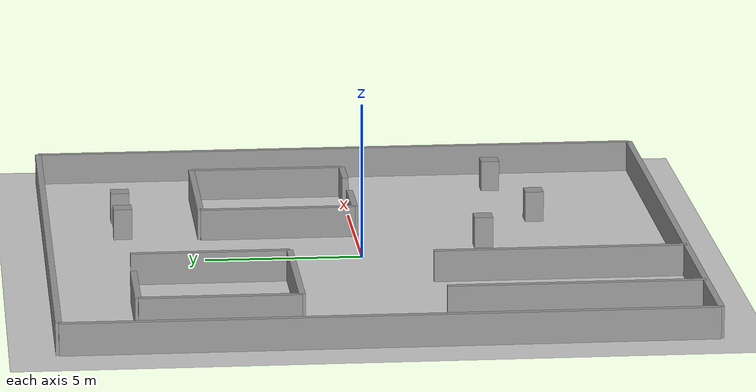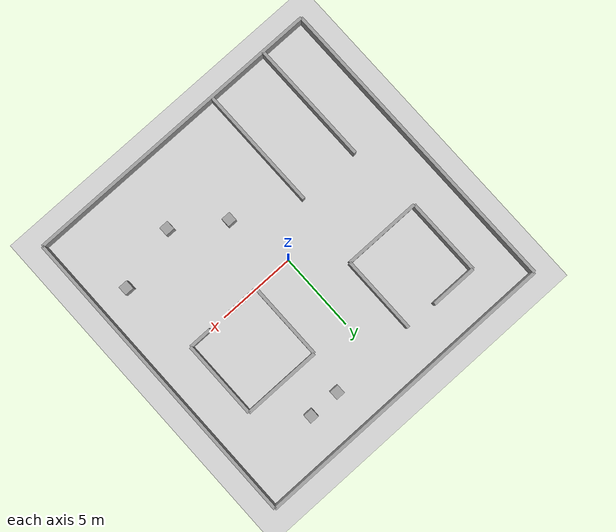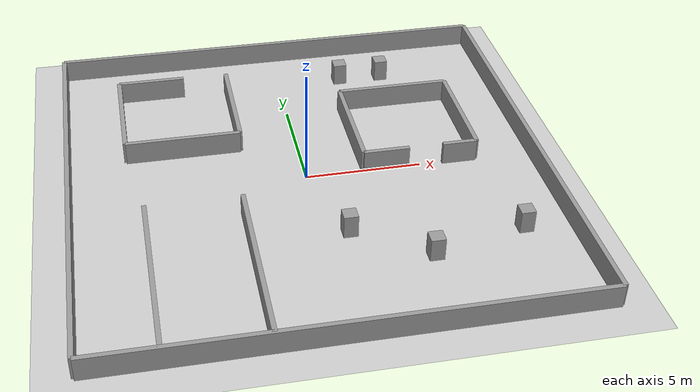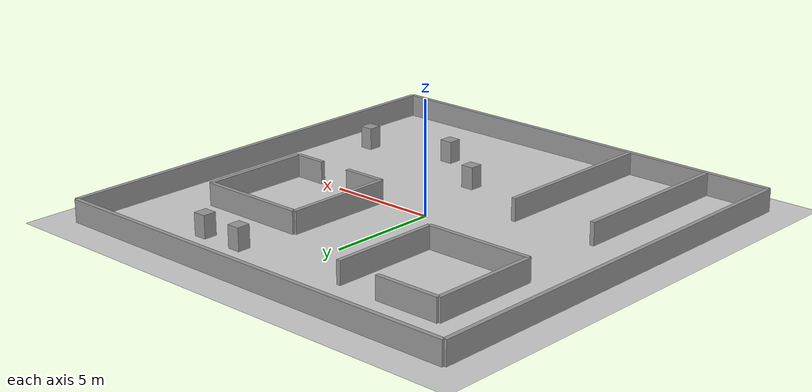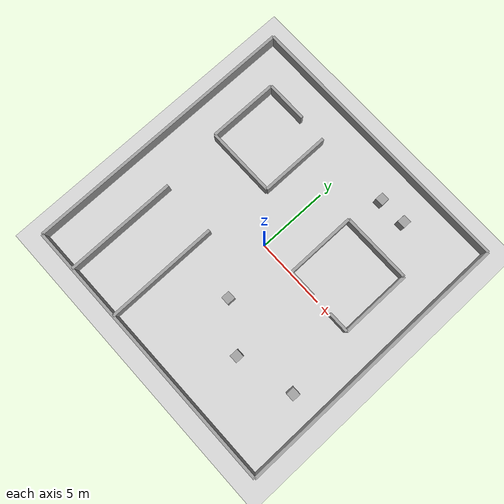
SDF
<?xml version="1.0" ?>
<sdf version="1.6">
  <world name="indoor_test">
    <include>
      <uri>model://ground_plane</uri>
    </include>
    <include>
      <uri>model://sun</uri>
    </include>

    <!-- Outer Walls -->
    <model name="outer_walls">
      <static>true</static>
      <link name="walls">

        <!-- Wall template -->
        <visual name="north">
          <pose>0 10 0.5 0 0 0</pose>
          <geometry><box><size>20 0.2 1</size></box></geometry>
          <material><script><uri>file://media/materials/scripts/gazebo.material</uri><name>Gazebo/Grey</name></script></material>
        </visual>
        <collision name="north">
          <pose>0 10 0.5 0 0 0</pose>
          <geometry><box><size>20 0.2 1</size></box></geometry>
        </collision>

        <visual name="south">
          <pose>0 -10 0.5 0 0 0</pose>
          <geometry><box><size>20 0.2 1</size></box></geometry>
          <material><script><uri>file://media/materials/scripts/gazebo.material</uri><name>Gazebo/Grey</name></script></material>
        </visual>
        <collision name="south">
          <pose>0 -10 0.5 0 0 0</pose>
          <geometry><box><size>20 0.2 1</size></box></geometry>
        </collision>

        <visual name="west">
          <pose>-10 0 0.5 0 0 0</pose>
          <geometry><box><size>0.2 20 1</size></box></geometry>
          <material><script><uri>file://media/materials/scripts/gazebo.material</uri><name>Gazebo/Grey</name></script></material>
        </visual>
        <collision name="west">
          <pose>-10 0 0.5 0 0 0</pose>
          <geometry><box><size>0.2 20 1</size></box></geometry>
        </collision>

        <visual name="east">
          <pose>10 0 0.5 0 0 0</pose>
          <geometry><box><size>0.2 20 1</size></box></geometry>
          <material><script><uri>file://media/materials/scripts/gazebo.material</uri><name>Gazebo/Grey</name></script></material>
        </visual>
        <collision name="east">
          <pose>10 0 0.5 0 0 0</pose>
          <geometry><box><size>0.2 20 1</size></box></geometry>
        </collision>

      </link>
    </model>

    <!-- Corridor -->
    <model name="corridor">
      <static>true</static>
      <link name="walls">
        <visual name="c_wall1">
          <pose>-7 -6 0.5 0 0 0</pose>
          <geometry><box><size>0.2 8 1</size></box></geometry>
          <material><script><uri>file://media/materials/scripts/gazebo.material</uri><name>Gazebo/Grey</name></script></material>
        </visual>
        <collision name="c_wall1">
          <pose>-7 -6 0.5 0 0 0</pose>
          <geometry><box><size>0.2 8 1</size></box></geometry>
        </collision>

        <visual name="c_wall2">
          <pose>-3 -6 0.5 0 0 0</pose>
          <geometry><box><size>0.2 8 1</size></box></geometry>
          <material><script><uri>file://media/materials/scripts/gazebo.material</uri><name>Gazebo/Grey</name></script></material>
        </visual>
        <collision name="c_wall2">
          <pose>-3 -6 0.5 0 0 0</pose>
          <geometry><box><size>0.2 8 1</size></box></geometry>
        </collision>
      </link>
    </model>

    <!-- Room 1 -->
    <model name="room_1">
      <static>true</static>
      <link name="walls">
        <!-- West -->
        <visual name="r1_west">
          <pose>2.5 2.5 0.5 0 0 0</pose>
          <geometry><box><size>0.2 5 1</size></box></geometry>
          <material><script><uri>file://media/materials/scripts/gazebo.material</uri><name>Gazebo/Grey</name></script></material>
        </visual>
        <collision name="r1_west">
          <pose>2.5 2.5 0.5 0 0 0</pose>
          <geometry><box><size>0.2 5 1</size></box></geometry>
        </collision>

        <!-- East -->
        <visual name="r1_east">
          <pose>7.5 2.5 0.5 0 0 0</pose>
          <geometry><box><size>0.2 5 1</size></box></geometry>
          <material><script><uri>file://media/materials/scripts/gazebo.material</uri><name>Gazebo/Grey</name></script></material>
        </visual>
        <collision name="r1_east">
          <pose>7.5 2.5 0.5 0 0 0</pose>
          <geometry><box><size>0.2 5 1</size></box></geometry>
        </collision>

        <!-- North -->
        <visual name="r1_north">
          <pose>5 5 0.5 0 0 0</pose>
          <geometry><box><size>5 0.2 1</size></box></geometry>
          <material><script><uri>file://media/materials/scripts/gazebo.material</uri><name>Gazebo/Grey</name></script></material>
        </visual>
        <collision name="r1_north">
          <pose>5 5 0.5 0 0 0</pose>
          <geometry><box><size>5 0.2 1</size></box></geometry>
        </collision>

        <!-- South split (gap in middle) -->
        <visual name="r1_south_left">
          <pose>3.5 0 0.5 0 0 0</pose>
          <geometry><box><size>2 0.2 1</size></box></geometry>
          <material><script><uri>file://media/materials/scripts/gazebo.material</uri><name>Gazebo/Grey</name></script></material>
        </visual>
        <collision name="r1_south_left">
          <pose>3.5 0 0.5 0 0 0</pose>
          <geometry><box><size>2 0.2 1</size></box></geometry>
        </collision>

        <visual name="r1_south_right">
          <pose>6.75 0 0.5 0 0 0</pose>
          <geometry><box><size>1.5 0.2 1</size></box></geometry>
          <material><script><uri>file://media/materials/scripts/gazebo.material</uri><name>Gazebo/Grey</name></script></material>
        </visual>
        <collision name="r1_south_right">
          <pose>6.75 0 0.5 0 0 0</pose>
          <geometry><box><size>1.5 0.2 1</size></box></geometry>
        </collision>
      </link>
    </model>

    <!-- Room 2 -->
    <model name="room_2">
      <static>true</static>
      <link name="walls">
        <visual name="r2_west">
          <pose>-7.5 5 0.5 0 0 0</pose>
          <geometry><box><size>0.2 5 1</size></box></geometry>
          <material><script><uri>file://media/materials/scripts/gazebo.material</uri><name>Gazebo/Grey</name></script></material>
        </visual>
        <collision name="r2_west">
          <pose>-7.5 5 0.5 0 0 0</pose>
          <geometry><box><size>0.2 5 1</size></box></geometry>
        </collision>

        <visual name="r2_east">
          <pose>-2.5 5 0.5 0 0 0</pose>
          <geometry><box><size>0.2 5 1</size></box></geometry>
          <material><script><uri>file://media/materials/scripts/gazebo.material</uri><name>Gazebo/Grey</name></script></material>
        </visual>
        <collision name="r2_east">
          <pose>-2.5 5 0.5 0 0 0</pose>
          <geometry><box><size>0.2 5 1</size></box></geometry>
        </collision>

        <visual name="r2_north">
          <pose>-6 7.5 0.5 0 0 0</pose>
          <geometry><box><size>3 0.2 1</size></box></geometry>
          <material><script><uri>file://media/materials/scripts/gazebo.material</uri><name>Gazebo/Grey</name></script></material>
        </visual>
        <collision name="r2_north">
          <pose>-6 7.5 0.5 0 0 0</pose>
          <geometry><box><size>3 0.2 1</size></box></geometry>
        </collision>

        <visual name="r2_south">
          <pose>-5 2.5 0.5 0 0 0</pose>
          <geometry><box><size>5 0.2 1</size></box></geometry>
          <material><script><uri>file://media/materials/scripts/gazebo.material</uri><name>Gazebo/Grey</name></script></material>
        </visual>
        <collision name="r2_south">
          <pose>-5 2.5 0.5 0 0 0</pose>
          <geometry><box><size>5 0.2 1</size></box></geometry>
        </collision>
      </link>
    </model>

    <!-- Pillars -->
    <!-- Repeatable pillar model with texture -->
    <model name="pillar_1">
      <static>true</static>
      <link name="pillar">
        <pose>1 -4 0.5 0 0 0</pose>
        <visual name="vis"><geometry><box><size>0.6 0.6 1</size></box></geometry><material><script><uri>file://media/materials/scripts/gazebo.material</uri><name>Gazebo/Grey</name></script></material></visual>
        <collision name="col"><geometry><box><size>0.6 0.6 1</size></box></geometry></collision>
      </link>
    </model>

    <model name="pillar_2">
      <static>true</static>
      <link name="pillar">
        <pose>5 7.5 0.5 0 0 0</pose>
        <visual name="vis"><geometry><box><size>0.6 0.6 1</size></box></geometry><material><script><uri>file://media/materials/scripts/gazebo.material</uri><name>Gazebo/Grey</name></script></material></visual>
        <collision name="col"><geometry><box><size>0.6 0.6 1</size></box></geometry></collision>
      </link>
    </model>

    <model name="pillar_3">
      <static>true</static>
      <link name="pillar">
        <pose>8 -5 0.5 0 0 0</pose>
        <visual name="vis"><geometry><box><size>0.6 0.6 1</size></box></geometry><material><script><uri>file://media/materials/scripts/gazebo.material</uri><name>Gazebo/Grey</name></script></material></visual>
        <collision name="col"><geometry><box><size>0.6 0.6 1</size></box></geometry></collision>
      </link>
    </model>

    <model name="pillar_4">
      <static>true</static>
      <link name="pillar">
        <pose>3 7.5 0.5 0 0 0</pose>
        <visual name="vis"><geometry><box><size>0.6 0.6 1</size></box></geometry><material><script><uri>file://media/materials/scripts/gazebo.material</uri><name>Gazebo/Grey</name></script></material></visual>
        <collision name="col"><geometry><box><size>0.6 0.6 1</size></box></geometry></collision>
      </link>
    </model>

    <model name="pillar_5">
      <static>true</static>
      <link name="pillar">
        <pose>4 -6 0.5 0 0 0</pose>
        <visual name="vis"><geometry><box><size>0.6 0.6 1</size></box></geometry><material><script><uri>file://media/materials/scripts/gazebo.material</uri><name>Gazebo/Grey</name></script></material></visual>
        <collision name="col"><geometry><box><size>0.6 0.6 1</size></box></geometry></collision>
      </link>
    </model>

  </world>
</sdf>
